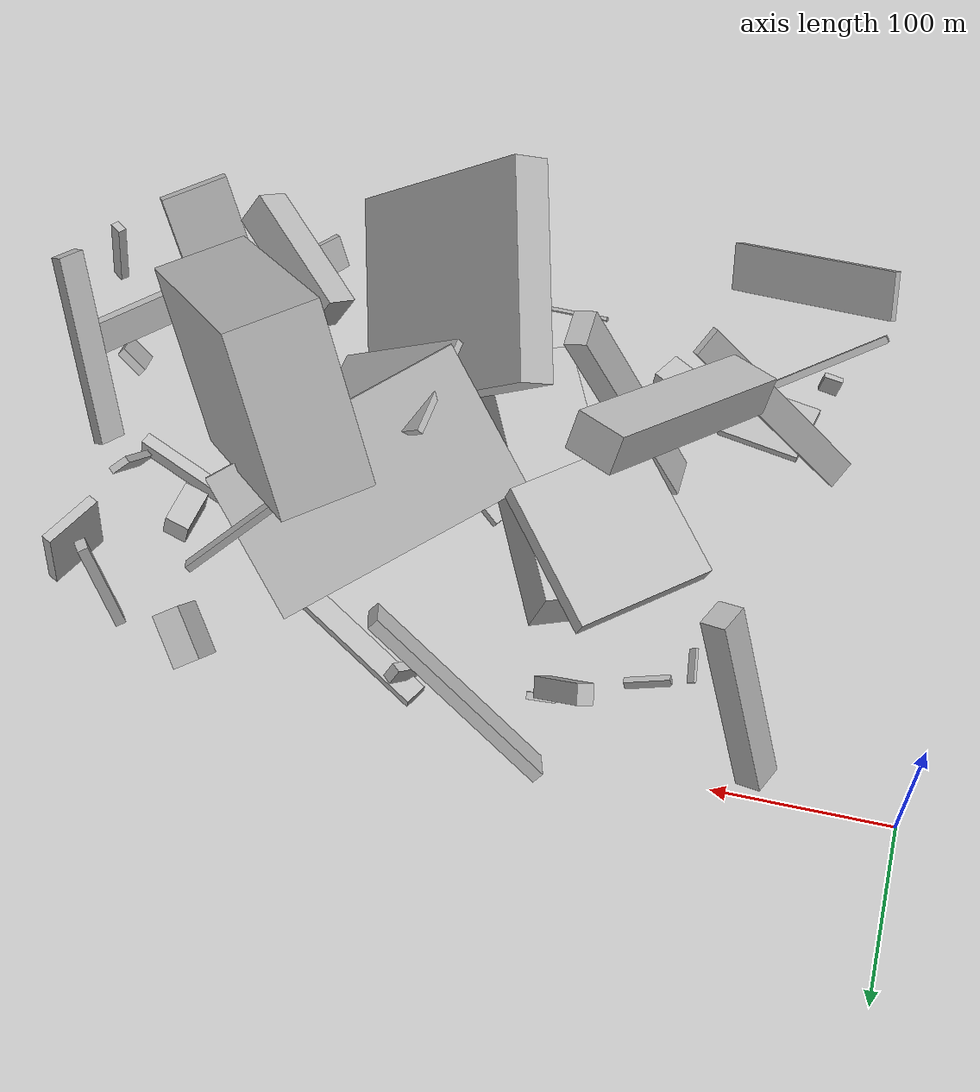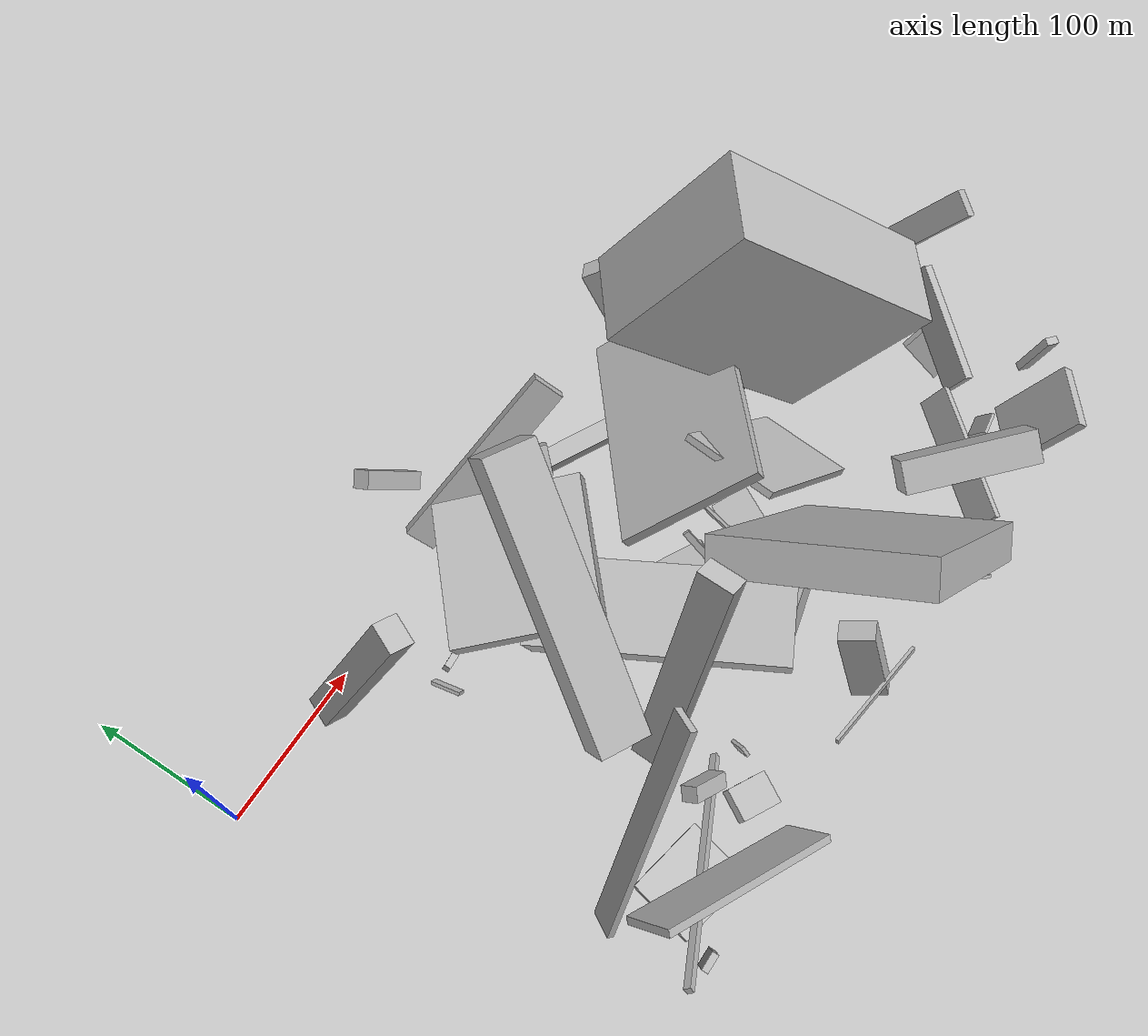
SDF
<sdf version="1.6">
 <world name="default">
  <model name="building_5">
   <static>0</static>
   <pose>271.421746593213 -23.621485639629242 16.13431606164099 1.563093900149482 -0.6673275288255832 0.806832439746451</pose>
   <link name="link">
    <gravity>0</gravity>
    <pose>0 0 3.0 0 0 0</pose>
    <collision name="collision"><geometry><box><size>20 10 6</size></box></geometry></collision>
    <visual name="visual">
     <cast_shadows>0</cast_shadows>
     <geometry><box><size>20 10 6</size></box></geometry>
     <material>
      <script>
       <uri>model://HANNAS_wall/materials/scripts</uri>
       <uri>model://HANNAS_wall/materials/textures</uri>
       <name>vrc/HANNAS_wall</name>
      </script>
     </material>
    </visual>
   </link>
  </model>
  <model name="building_9">
   <static>0</static>
   <pose>155.23234482368116 -216.74964952536408 35.22265276433423 -0.6791956581982874 0.6340952250072783 1.8277188208441097</pose>
   <link name="link">
    <gravity>0</gravity>
    <pose>0 0 13.5 0 0 0</pose>
    <collision name="collision"><geometry><box><size>10 9 27</size></box></geometry></collision>
    <visual name="visual">
     <cast_shadows>0</cast_shadows>
     <geometry><box><size>10 9 27</size></box></geometry>
     <material>
      <script>
       <uri>model://HANNAS_wall/materials/scripts</uri>
       <uri>model://HANNAS_wall/materials/textures</uri>
       <name>vrc/HANNAS_wall</name>
      </script>
     </material>
    </visual>
   </link>
  </model>
  <model name="building_13">
   <static>0</static>
   <pose>346.7322080090878 -160.80504800132942 55.76217485513511 0.8082823899033313 -0.10583015550256554 -1.7351436863449097</pose>
   <link name="link">
    <gravity>0</gravity>
    <pose>0 0 48.5 0 0 0</pose>
    <collision name="collision"><geometry><box><size>57 4 97</size></box></geometry></collision>
    <visual name="visual">
     <cast_shadows>0</cast_shadows>
     <geometry><box><size>57 4 97</size></box></geometry>
     <material>
      <script>
       <uri>model://HANNAS_wall/materials/scripts</uri>
       <uri>model://HANNAS_wall/materials/textures</uri>
       <name>vrc/HANNAS_wall</name>
      </script>
     </material>
    </visual>
   </link>
  </model>
  <model name="building_14">
   <static>0</static>
   <pose>237.87747425466506 2.290979845805071 51.56819352941494 2.357849785618455 0.5709832682782415 0.7369884780921414</pose>
   <link name="link">
    <gravity>0</gravity>
    <pose>0 0 10.0 0 0 0</pose>
    <collision name="collision"><geometry><box><size>7 126 20</size></box></geometry></collision>
    <visual name="visual">
     <cast_shadows>0</cast_shadows>
     <geometry><box><size>7 126 20</size></box></geometry>
     <material>
      <script>
       <uri>model://HANNAS_wall/materials/scripts</uri>
       <uri>model://HANNAS_wall/materials/textures</uri>
       <name>vrc/HANNAS_wall</name>
      </script>
     </material>
    </visual>
   </link>
  </model>
  <model name="building_16">
   <static>0</static>
   <pose>398.97003732014093 -154.1702490644935 109.54044638705864 0.029866214052484026 -0.9027827413062709 -0.9384277073334496</pose>
   <link name="link">
    <gravity>0</gravity>
    <pose>0 0 69.5 0 0 0</pose>
    <collision name="collision"><geometry><box><size>102 51 139</size></box></geometry></collision>
    <visual name="visual">
     <cast_shadows>0</cast_shadows>
     <geometry><box><size>102 51 139</size></box></geometry>
     <material>
      <script>
       <uri>model://HANNAS_wall/materials/scripts</uri>
       <uri>model://HANNAS_wall/materials/textures</uri>
       <name>vrc/HANNAS_wall</name>
      </script>
     </material>
    </visual>
   </link>
  </model>
  <model name="building_17">
   <static>0</static>
   <pose>275.35121001154914 -205.3219912383288 23.209319272910815 0.33802681908174914 -0.3035855335651364 -1.4567776951393692</pose>
   <link name="link">
    <gravity>0</gravity>
    <pose>0 0 6.5 0 0 0</pose>
    <collision name="collision"><geometry><box><size>4 68 13</size></box></geometry></collision>
    <visual name="visual">
     <cast_shadows>0</cast_shadows>
     <geometry><box><size>4 68 13</size></box></geometry>
     <material>
      <script>
       <uri>model://HANNAS_wall/materials/scripts</uri>
       <uri>model://HANNAS_wall/materials/textures</uri>
       <name>vrc/HANNAS_wall</name>
      </script>
     </material>
    </visual>
   </link>
  </model>
  <model name="building_18">
   <static>0</static>
   <pose>194.88710801433808 -154.11973293101568 35.85209927569337 0.45012844119730017 -1.310467868651778 -3.1396361202172685</pose>
   <link name="link">
    <gravity>0</gravity>
    <pose>0 0 26.0 0 0 0</pose>
    <collision name="collision"><geometry><box><size>34 150 52</size></box></geometry></collision>
    <visual name="visual">
     <cast_shadows>0</cast_shadows>
     <geometry><box><size>34 150 52</size></box></geometry>
     <material>
      <script>
       <uri>model://HANNAS_wall/materials/scripts</uri>
       <uri>model://HANNAS_wall/materials/textures</uri>
       <name>vrc/HANNAS_wall</name>
      </script>
     </material>
    </visual>
   </link>
  </model>
  <model name="building_25">
   <static>0</static>
   <pose>296.65571595458874 -218.16371816673745 100.81996352203777 2.211945389465883 -0.4392059310655683 -1.3260516322903309</pose>
   <link name="link">
    <gravity>0</gravity>
    <pose>0 0 11.0 0 0 0</pose>
    <collision name="collision"><geometry><box><size>121 138 22</size></box></geometry></collision>
    <visual name="visual">
     <cast_shadows>0</cast_shadows>
     <geometry><box><size>121 138 22</size></box></geometry>
     <material>
      <script>
       <uri>model://HANNAS_wall/materials/scripts</uri>
       <uri>model://HANNAS_wall/materials/textures</uri>
       <name>vrc/HANNAS_wall</name>
      </script>
     </material>
    </visual>
   </link>
  </model>
  <model name="building_26">
   <static>0</static>
   <pose>176.5906265317878 -175.62605746606974 85.19245224577843 1.9646793592014236 0.047211926715162805 1.5064453995964082</pose>
   <link name="link">
    <gravity>0</gravity>
    <pose>0 0 6.5 0 0 0</pose>
    <collision name="collision"><geometry><box><size>21 150 13</size></box></geometry></collision>
    <visual name="visual">
     <cast_shadows>0</cast_shadows>
     <geometry><box><size>21 150 13</size></box></geometry>
     <material>
      <script>
       <uri>model://HANNAS_wall/materials/scripts</uri>
       <uri>model://HANNAS_wall/materials/textures</uri>
       <name>vrc/HANNAS_wall</name>
      </script>
     </material>
    </visual>
   </link>
  </model>
  <model name="building_29">
   <static>0</static>
   <pose>473.13118394224466 -142.75542190976944 93.24000216343464 -2.5090713097596655 -0.8754352182857953 -1.103711679919635</pose>
   <link name="link">
    <gravity>0</gravity>
    <pose>0 0 3.5 0 0 0</pose>
    <collision name="collision"><geometry><box><size>107 16 7</size></box></geometry></collision>
    <visual name="visual">
     <cast_shadows>0</cast_shadows>
     <geometry><box><size>107 16 7</size></box></geometry>
     <material>
      <script>
       <uri>model://HANNAS_wall/materials/scripts</uri>
       <uri>model://HANNAS_wall/materials/textures</uri>
       <name>vrc/HANNAS_wall</name>
      </script>
     </material>
    </visual>
   </link>
  </model>
  <model name="building_38">
   <static>0</static>
   <pose>155.93506134272093 -244.72449816559055 15.946716063355908 0.02438408609075543 -1.4110927114436425 -2.114599019833601</pose>
   <link name="link">
    <gravity>0</gravity>
    <pose>0 0 9.5 0 0 0</pose>
    <collision name="collision"><geometry><box><size>17 23 19</size></box></geometry></collision>
    <visual name="visual">
     <cast_shadows>0</cast_shadows>
     <geometry><box><size>17 23 19</size></box></geometry>
     <material>
      <script>
       <uri>model://HANNAS_wall/materials/scripts</uri>
       <uri>model://HANNAS_wall/materials/textures</uri>
       <name>vrc/HANNAS_wall</name>
      </script>
     </material>
    </visual>
   </link>
  </model>
  <model name="building_41">
   <static>0</static>
   <pose>341.60662374326216 -85.14145789409254 16.170556541008395 1.436852530031555 -0.055667547855184296 1.2056905520114292</pose>
   <link name="link">
    <gravity>0</gravity>
    <pose>0 0 56.5 0 0 0</pose>
    <collision name="collision"><geometry><box><size>7 11 113</size></box></geometry></collision>
    <visual name="visual">
     <cast_shadows>0</cast_shadows>
     <geometry><box><size>7 11 113</size></box></geometry>
     <material>
      <script>
       <uri>model://HANNAS_wall/materials/scripts</uri>
       <uri>model://HANNAS_wall/materials/textures</uri>
       <name>vrc/HANNAS_wall</name>
      </script>
     </material>
    </visual>
   </link>
  </model>
  <model name="building_44">
   <static>0</static>
   <pose>353.7047776138186 -51.87620045410418 117.01997561058585 2.462572070406906 0.42996031222149983 -1.3111635025501447</pose>
   <link name="link">
    <gravity>0</gravity>
    <pose>0 0 2.0 0 0 0</pose>
    <collision name="collision"><geometry><box><size>6 104 4</size></box></geometry></collision>
    <visual name="visual">
     <cast_shadows>0</cast_shadows>
     <geometry><box><size>6 104 4</size></box></geometry>
     <material>
      <script>
       <uri>model://HANNAS_wall/materials/scripts</uri>
       <uri>model://HANNAS_wall/materials/textures</uri>
       <name>vrc/HANNAS_wall</name>
      </script>
     </material>
    </visual>
   </link>
  </model>
  <model name="building_46">
   <static>0</static>
   <pose>98.1031291967084 -19.045528267698394 64.49531114001341 2.035496633754219 -1.0970166542090434 -0.8408932123322227</pose>
   <link name="link">
    <gravity>0</gravity>
    <pose>0 0 9.0 0 0 0</pose>
    <collision name="collision"><geometry><box><size>113 15 18</size></box></geometry></collision>
    <visual name="visual">
     <cast_shadows>0</cast_shadows>
     <geometry><box><size>113 15 18</size></box></geometry>
     <material>
      <script>
       <uri>model://HANNAS_wall/materials/scripts</uri>
       <uri>model://HANNAS_wall/materials/textures</uri>
       <name>vrc/HANNAS_wall</name>
      </script>
     </material>
    </visual>
   </link>
  </model>
  <model name="building_51">
   <static>0</static>
   <pose>447.143308683971 -267.6027939846478 42.227691159410455 3.040567215498969 -0.9457880873833623 -0.8682007279941073</pose>
   <link name="link">
    <gravity>0</gravity>
    <pose>0 0 3.5 0 0 0</pose>
    <collision name="collision"><geometry><box><size>52 40 7</size></box></geometry></collision>
    <visual name="visual">
     <cast_shadows>0</cast_shadows>
     <geometry><box><size>52 40 7</size></box></geometry>
     <material>
      <script>
       <uri>model://HANNAS_wall/materials/scripts</uri>
       <uri>model://HANNAS_wall/materials/textures</uri>
       <name>vrc/HANNAS_wall</name>
      </script>
     </material>
    </visual>
   </link>
  </model>
  <model name="building_55">
   <static>0</static>
   <pose>108.35342008683637 -192.29144181079405 66.73396188925861 1.1196604996998218 0.4348265121435806 -0.7484699216123905</pose>
   <link name="link">
    <gravity>0</gravity>
    <pose>0 0 8.5 0 0 0</pose>
    <collision name="collision"><geometry><box><size>4 150 17</size></box></geometry></collision>
    <visual name="visual">
     <cast_shadows>0</cast_shadows>
     <geometry><box><size>4 150 17</size></box></geometry>
     <material>
      <script>
       <uri>model://HANNAS_wall/materials/scripts</uri>
       <uri>model://HANNAS_wall/materials/textures</uri>
       <name>vrc/HANNAS_wall</name>
      </script>
     </material>
    </visual>
   </link>
  </model>
  <model name="building_65">
   <static>0</static>
   <pose>386.3809083712303 -14.618123899439466 37.28490891264739 -0.39476335607542407 -0.4570844689023002 -0.9202858906484338</pose>
   <link name="link">
    <gravity>0</gravity>
    <pose>0 0 16.0 0 0 0</pose>
    <collision name="collision"><geometry><box><size>30 15 32</size></box></geometry></collision>
    <visual name="visual">
     <cast_shadows>0</cast_shadows>
     <geometry><box><size>30 15 32</size></box></geometry>
     <material>
      <script>
       <uri>model://HANNAS_wall/materials/scripts</uri>
       <uri>model://HANNAS_wall/materials/textures</uri>
       <name>vrc/HANNAS_wall</name>
      </script>
     </material>
    </visual>
   </link>
  </model>
  <model name="building_69">
   <static>0</static>
   <pose>281.32636424148245 -68.94042906636898 71.01725559378316 -0.9707989765833269 -0.23460316225815703 -2.477251918317001</pose>
   <link name="link">
    <gravity>0</gravity>
    <pose>0 0 42.5 0 0 0</pose>
    <collision name="collision"><geometry><box><size>147 6 85</size></box></geometry></collision>
    <visual name="visual">
     <cast_shadows>0</cast_shadows>
     <geometry><box><size>147 6 85</size></box></geometry>
     <material>
      <script>
       <uri>model://HANNAS_wall/materials/scripts</uri>
       <uri>model://HANNAS_wall/materials/textures</uri>
       <name>vrc/HANNAS_wall</name>
      </script>
     </material>
    </visual>
   </link>
  </model>
  <model name="building_71">
   <static>0</static>
   <pose>120.81248987893424 -173.1858720522274 130.9942589316468 -0.2032277389310323 -0.9439560517571628 -1.8860181093547188</pose>
   <link name="link">
    <gravity>0</gravity>
    <pose>0 0 75.0 0 0 0</pose>
    <collision name="collision"><geometry><box><size>21 27 150</size></box></geometry></collision>
    <visual name="visual">
     <cast_shadows>0</cast_shadows>
     <geometry><box><size>21 27 150</size></box></geometry>
     <material>
      <script>
       <uri>model://HANNAS_wall/materials/scripts</uri>
       <uri>model://HANNAS_wall/materials/textures</uri>
       <name>vrc/HANNAS_wall</name>
      </script>
     </material>
    </visual>
   </link>
  </model>
  <model name="building_73">
   <static>0</static>
   <pose>479.32337742362046 -193.72569129652214 17.79218168637988 2.203436998945835 -0.513512652577913 -2.341326796653107</pose>
   <link name="link">
    <gravity>0</gravity>
    <pose>0 0 8.5 0 0 0</pose>
    <collision name="collision"><geometry><box><size>5 34 17</size></box></geometry></collision>
    <visual name="visual">
     <cast_shadows>0</cast_shadows>
     <geometry><box><size>5 34 17</size></box></geometry>
     <material>
      <script>
       <uri>model://HANNAS_wall/materials/scripts</uri>
       <uri>model://HANNAS_wall/materials/textures</uri>
       <name>vrc/HANNAS_wall</name>
      </script>
     </material>
    </visual>
   </link>
  </model>
  <model name="building_76">
   <static>0</static>
   <pose>143.78392744442283 -52.205304445585064 10.988437874693037 0.7868912275178591 1.156255421118373 2.455073361720852</pose>
   <link name="link">
    <gravity>0</gravity>
    <pose>0 0 2.0 0 0 0</pose>
    <collision name="collision"><geometry><box><size>5 26 4</size></box></geometry></collision>
    <visual name="visual">
     <cast_shadows>0</cast_shadows>
     <geometry><box><size>5 26 4</size></box></geometry>
     <material>
      <script>
       <uri>model://HANNAS_wall/materials/scripts</uri>
       <uri>model://HANNAS_wall/materials/textures</uri>
       <name>vrc/HANNAS_wall</name>
      </script>
     </material>
    </visual>
   </link>
  </model>
  <model name="building_77">
   <static>0</static>
   <pose>461.42619113647646 -45.35329713407715 33.58959965957743 -0.07816284151549588 -0.005811306669042181 2.646631163815487</pose>
   <link name="link">
    <gravity>0</gravity>
    <pose>0 0 20.0 0 0 0</pose>
    <collision name="collision"><geometry><box><size>6 35 40</size></box></geometry></collision>
    <visual name="visual">
     <cast_shadows>0</cast_shadows>
     <geometry><box><size>6 35 40</size></box></geometry>
     <material>
      <script>
       <uri>model://HANNAS_wall/materials/scripts</uri>
       <uri>model://HANNAS_wall/materials/textures</uri>
       <name>vrc/HANNAS_wall</name>
      </script>
     </material>
    </visual>
   </link>
  </model>
  <model name="building_80">
   <static>0</static>
   <pose>398.1633472714932 -242.47676080520537 39.64432349529938 0.9921462521837967 0.06519437478967766 -2.319186184960368</pose>
   <link name="link">
    <gravity>0</gravity>
    <pose>0 0 2.0 0 0 0</pose>
    <collision name="collision"><geometry><box><size>86 20 4</size></box></geometry></collision>
    <visual name="visual">
     <cast_shadows>0</cast_shadows>
     <geometry><box><size>86 20 4</size></box></geometry>
     <material>
      <script>
       <uri>model://HANNAS_wall/materials/scripts</uri>
       <uri>model://HANNAS_wall/materials/textures</uri>
       <name>vrc/HANNAS_wall</name>
      </script>
     </material>
    </visual>
   </link>
  </model>
  <model name="building_82">
   <static>0</static>
   <pose>346.82952422362763 -66.1234297804462 16.821422633426053 -1.6912155654559689 -0.009511388242024306 1.0323392576782144</pose>
   <link name="link">
    <gravity>0</gravity>
    <pose>0 0 48.0 0 0 0</pose>
    <collision name="collision"><geometry><box><size>13 7 96</size></box></geometry></collision>
    <visual name="visual">
     <cast_shadows>0</cast_shadows>
     <geometry><box><size>13 7 96</size></box></geometry>
     <material>
      <script>
       <uri>model://HANNAS_wall/materials/scripts</uri>
       <uri>model://HANNAS_wall/materials/textures</uri>
       <name>vrc/HANNAS_wall</name>
      </script>
     </material>
    </visual>
   </link>
  </model>
  <model name="building_85">
   <static>0</static>
   <pose>494.4160421617978 -247.60699021692574 29.507409671976642 1.6962594632633987 -0.17174291934649885 0.8698641101099696</pose>
   <link name="link">
    <gravity>0</gravity>
    <pose>0 0 4.0 0 0 0</pose>
    <collision name="collision"><geometry><box><size>5 38 8</size></box></geometry></collision>
    <visual name="visual">
     <cast_shadows>0</cast_shadows>
     <geometry><box><size>5 38 8</size></box></geometry>
     <material>
      <script>
       <uri>model://HANNAS_wall/materials/scripts</uri>
       <uri>model://HANNAS_wall/materials/textures</uri>
       <name>vrc/HANNAS_wall</name>
      </script>
     </material>
    </visual>
   </link>
  </model>
  <model name="building_86">
   <static>0</static>
   <pose>112.2476208059426 -231.22222597365703 37.84751664972332 2.571945753365977 -0.5631387815097111 -0.8482723437944749</pose>
   <link name="link">
    <gravity>0</gravity>
    <pose>0 0 2.0 0 0 0</pose>
    <collision name="collision"><geometry><box><size>4 150 4</size></box></geometry></collision>
    <visual name="visual">
     <cast_shadows>0</cast_shadows>
     <geometry><box><size>4 150 4</size></box></geometry>
     <material>
      <script>
       <uri>model://HANNAS_wall/materials/scripts</uri>
       <uri>model://HANNAS_wall/materials/textures</uri>
       <name>vrc/HANNAS_wall</name>
      </script>
     </material>
    </visual>
   </link>
  </model>
  <model name="building_88">
   <static>0</static>
   <pose>96.24227904292638 -240.1595320988268 115.67831960789366 -0.6585192423693895 -0.5313734655806212 2.696270085064754</pose>
   <link name="link">
    <gravity>0</gravity>
    <pose>0 0 13.0 0 0 0</pose>
    <collision name="collision"><geometry><box><size>110 4 26</size></box></geometry></collision>
    <visual name="visual">
     <cast_shadows>0</cast_shadows>
     <geometry><box><size>110 4 26</size></box></geometry>
     <material>
      <script>
       <uri>model://HANNAS_wall/materials/scripts</uri>
       <uri>model://HANNAS_wall/materials/textures</uri>
       <name>vrc/HANNAS_wall</name>
      </script>
     </material>
    </visual>
   </link>
  </model>
  <model name="building_89">
   <static>0</static>
   <pose>265.5258412791094 -249.34625959598577 28.960720889904717 1.2508362426682234 -0.34962640136916834 -1.1158424195235066</pose>
   <link name="link">
    <gravity>0</gravity>
    <pose>0 0 7.0 0 0 0</pose>
    <collision name="collision"><geometry><box><size>21 50 14</size></box></geometry></collision>
    <visual name="visual">
     <cast_shadows>0</cast_shadows>
     <geometry><box><size>21 50 14</size></box></geometry>
     <material>
      <script>
       <uri>model://HANNAS_wall/materials/scripts</uri>
       <uri>model://HANNAS_wall/materials/textures</uri>
       <name>vrc/HANNAS_wall</name>
      </script>
     </material>
    </visual>
   </link>
  </model>
  <model name="building_90">
   <static>0</static>
   <pose>298.14829353966394 -158.0746423664619 17.457302637696923 -2.8757902005087277 -0.08568984630401823 -2.13532271712755</pose>
   <link name="link">
    <gravity>0</gravity>
    <pose>0 0 3.0 0 0 0</pose>
    <collision name="collision"><geometry><box><size>58 24 6</size></box></geometry></collision>
    <visual name="visual">
     <cast_shadows>0</cast_shadows>
     <geometry><box><size>58 24 6</size></box></geometry>
     <material>
      <script>
       <uri>model://HANNAS_wall/materials/scripts</uri>
       <uri>model://HANNAS_wall/materials/textures</uri>
       <name>vrc/HANNAS_wall</name>
      </script>
     </material>
    </visual>
   </link>
  </model>
  <model name="building_91">
   <static>0</static>
   <pose>193.19552350058575 3.3605277888373424 94.02385649061773 0.6087283144730591 0.5013490531528355 -2.6553712959968316</pose>
   <link name="link">
    <gravity>0</gravity>
    <pose>0 0 19.0 0 0 0</pose>
    <collision name="collision"><geometry><box><size>10 11 38</size></box></geometry></collision>
    <visual name="visual">
     <cast_shadows>0</cast_shadows>
     <geometry><box><size>10 11 38</size></box></geometry>
     <material>
      <script>
       <uri>model://HANNAS_wall/materials/scripts</uri>
       <uri>model://HANNAS_wall/materials/textures</uri>
       <name>vrc/HANNAS_wall</name>
      </script>
     </material>
    </visual>
   </link>
  </model>
  <model name="building_93">
   <static>0</static>
   <pose>441.37065612664406 -108.36616951652708 47.4094943791082 2.31913573014999 -0.9644744903380247 1.620546145604239</pose>
   <link name="link">
    <gravity>0</gravity>
    <pose>0 0 5.5 0 0 0</pose>
    <collision name="collision"><geometry><box><size>65 4 11</size></box></geometry></collision>
    <visual name="visual">
     <cast_shadows>0</cast_shadows>
     <geometry><box><size>65 4 11</size></box></geometry>
     <material>
      <script>
       <uri>model://HANNAS_wall/materials/scripts</uri>
       <uri>model://HANNAS_wall/materials/textures</uri>
       <name>vrc/HANNAS_wall</name>
      </script>
     </material>
    </visual>
   </link>
  </model>
  <model name="building_96">
   <static>0</static>
   <pose>197.72947378557205 -26.167046134837136 12.512076923365008 1.1188184437217572 -0.011646087698384423 0.06183226049822846</pose>
   <link name="link">
    <gravity>0</gravity>
    <pose>0 0 2.0 0 0 0</pose>
    <collision name="collision"><geometry><box><size>16 19 4</size></box></geometry></collision>
    <visual name="visual">
     <cast_shadows>0</cast_shadows>
     <geometry><box><size>16 19 4</size></box></geometry>
     <material>
      <script>
       <uri>model://HANNAS_wall/materials/scripts</uri>
       <uri>model://HANNAS_wall/materials/textures</uri>
       <name>vrc/HANNAS_wall</name>
      </script>
     </material>
    </visual>
   </link>
  </model>
  <model name="building_98">
   <static>0</static>
   <pose>458.0782430817378 -187.69812462015514 49.89832276764618 0.44125572810100727 -0.19350621074875463 0.8486781367104556</pose>
   <link name="link">
    <gravity>0</gravity>
    <pose>0 0 9.5 0 0 0</pose>
    <collision name="collision"><geometry><box><size>75 6 19</size></box></geometry></collision>
    <visual name="visual">
     <cast_shadows>0</cast_shadows>
     <geometry><box><size>75 6 19</size></box></geometry>
     <material>
      <script>
       <uri>model://HANNAS_wall/materials/scripts</uri>
       <uri>model://HANNAS_wall/materials/textures</uri>
       <name>vrc/HANNAS_wall</name>
      </script>
     </material>
    </visual>
   </link>
  </model>
  <model name="building_99">
   <static>0</static>
   <pose>110.05650194993687 -211.7202088692682 8.599790240040218 1.7243697488051368 0.05498179745392994 -0.2156213367476665</pose>
   <link name="link">
    <gravity>0</gravity>
    <pose>0 0 20.0 0 0 0</pose>
    <collision name="collision"><geometry><box><size>48 4 40</size></box></geometry></collision>
    <visual name="visual">
     <cast_shadows>0</cast_shadows>
     <geometry><box><size>48 4 40</size></box></geometry>
     <material>
      <script>
       <uri>model://HANNAS_wall/materials/scripts</uri>
       <uri>model://HANNAS_wall/materials/textures</uri>
       <name>vrc/HANNAS_wall</name>
      </script>
     </material>
    </visual>
   </link>
  </model>
  <model name="building_102">
   <static>0</static>
   <pose>120.47357631246388 -51.195048846910424 18.940927364051667 1.2436864297653152 0.8112837323635996 -0.12831751680198777</pose>
   <link name="link">
    <gravity>0</gravity>
    <pose>0 0 9.5 0 0 0</pose>
    <collision name="collision"><geometry><box><size>5 2 19</size></box></geometry></collision>
    <visual name="visual">
     <cast_shadows>0</cast_shadows>
     <geometry><box><size>5 2 19</size></box></geometry>
     <material>
      <script>
       <uri>model://HANNAS_wall/materials/scripts</uri>
       <uri>model://HANNAS_wall/materials/textures</uri>
       <name>vrc/HANNAS_wall</name>
      </script>
     </material>
    </visual>
   </link>
  </model>
  <model name="building_103">
   <static>0</static>
   <pose>287.84260403041776 -130.6726785259006 41.041359960712285 1.2548446484673572 -0.28505816664291367 -0.28327878358739383</pose>
   <link name="link">
    <gravity>0</gravity>
    <pose>0 0 34.5 0 0 0</pose>
    <collision name="collision"><geometry><box><size>2 12 69</size></box></geometry></collision>
    <visual name="visual">
     <cast_shadows>0</cast_shadows>
     <geometry><box><size>2 12 69</size></box></geometry>
     <material>
      <script>
       <uri>model://HANNAS_wall/materials/scripts</uri>
       <uri>model://HANNAS_wall/materials/textures</uri>
       <name>vrc/HANNAS_wall</name>
      </script>
     </material>
    </visual>
   </link>
  </model>
  <model name="building_105">
   <static>0</static>
   <pose>230.68583577533008 -138.35726883541219 22.757669102353915 -1.2324022499457945 0.1560240427340342 -2.143994982329313</pose>
   <link name="link">
    <gravity>0</gravity>
    <pose>0 0 17.5 0 0 0</pose>
    <collision name="collision"><geometry><box><size>47 5 35</size></box></geometry></collision>
    <visual name="visual">
     <cast_shadows>0</cast_shadows>
     <geometry><box><size>47 5 35</size></box></geometry>
     <material>
      <script>
       <uri>model://HANNAS_wall/materials/scripts</uri>
       <uri>model://HANNAS_wall/materials/textures</uri>
       <name>vrc/HANNAS_wall</name>
      </script>
     </material>
    </visual>
   </link>
  </model>
  <model name="building_116">
   <static>0</static>
   <pose>442.7083510982838 -31.2791862015645 32.93812225289266 1.9284354950392066 0.1261707302091125 0.6221948319617087</pose>
   <link name="link">
    <gravity>0</gravity>
    <pose>0 0 4.5 0 0 0</pose>
    <collision name="collision"><geometry><box><size>6 60 9</size></box></geometry></collision>
    <visual name="visual">
     <cast_shadows>0</cast_shadows>
     <geometry><box><size>6 60 9</size></box></geometry>
     <material>
      <script>
       <uri>model://HANNAS_wall/materials/scripts</uri>
       <uri>model://HANNAS_wall/materials/textures</uri>
       <name>vrc/HANNAS_wall</name>
      </script>
     </material>
    </visual>
   </link>
  </model>
  <model name="building_121">
   <static>0</static>
   <pose>262.0381283093777 -149.11492258983807 37.435677422154455 -2.462124099518698 0.7729917382010387 -1.5729332071369853</pose>
   <link name="link">
    <gravity>0</gravity>
    <pose>0 0 1.0 0 0 0</pose>
    <collision name="collision"><geometry><box><size>49 4 2</size></box></geometry></collision>
    <visual name="visual">
     <cast_shadows>0</cast_shadows>
     <geometry><box><size>49 4 2</size></box></geometry>
     <material>
      <script>
       <uri>model://HANNAS_wall/materials/scripts</uri>
       <uri>model://HANNAS_wall/materials/textures</uri>
       <name>vrc/HANNAS_wall</name>
      </script>
     </material>
    </visual>
   </link>
  </model>
  <model name="building_125">
   <static>0</static>
   <pose>246.88024467178326 -266.6002432391066 27.316890289284686 2.916933773567278 -0.3638479547759594 -1.6391842655179243</pose>
   <link name="link">
    <gravity>0</gravity>
    <pose>0 0 1.5 0 0 0</pose>
    <collision name="collision"><geometry><box><size>2 80 3</size></box></geometry></collision>
    <visual name="visual">
     <cast_shadows>0</cast_shadows>
     <geometry><box><size>2 80 3</size></box></geometry>
     <material>
      <script>
       <uri>model://HANNAS_wall/materials/scripts</uri>
       <uri>model://HANNAS_wall/materials/textures</uri>
       <name>vrc/HANNAS_wall</name>
      </script>
     </material>
    </visual>
   </link>
  </model>
  <model name="building_127">
   <static>0</static>
   <pose>391.98834100844033 -239.311871111218 66.03721355560246 2.173747612644296 -0.11703797510403995 -0.8007872325981451</pose>
   <link name="link">
    <gravity>0</gravity>
    <pose>0 0 10.0 0 0 0</pose>
    <collision name="collision"><geometry><box><size>80 22 20</size></box></geometry></collision>
    <visual name="visual">
     <cast_shadows>0</cast_shadows>
     <geometry><box><size>80 22 20</size></box></geometry>
     <material>
      <script>
       <uri>model://HANNAS_wall/materials/scripts</uri>
       <uri>model://HANNAS_wall/materials/textures</uri>
       <name>vrc/HANNAS_wall</name>
      </script>
     </material>
    </visual>
   </link>
  </model>
  <model name="building_131">
   <static>0</static>
   <pose>256.7461983478546 -169.3515285594504 7.756912573203741 -3.0870217691761908 -0.9319626347529238 -0.687657436079018</pose>
   <link name="link">
    <gravity>0</gravity>
    <pose>0 0 6.0 0 0 0</pose>
    <collision name="collision"><geometry><box><size>4 17 12</size></box></geometry></collision>
    <visual name="visual">
     <cast_shadows>0</cast_shadows>
     <geometry><box><size>4 17 12</size></box></geometry>
     <material>
      <script>
       <uri>model://HANNAS_wall/materials/scripts</uri>
       <uri>model://HANNAS_wall/materials/textures</uri>
       <name>vrc/HANNAS_wall</name>
      </script>
     </material>
    </visual>
   </link>
  </model>
  <model name="building_135">
   <static>0</static>
   <pose>415.03117926900205 -90.66817602685477 16.19831610237924 -0.053419847806181954 -0.23382873261323653 -0.20887881852666468</pose>
   <link name="link">
    <gravity>0</gravity>
    <pose>0 0 10.5 0 0 0</pose>
    <collision name="collision"><geometry><box><size>14 24 21</size></box></geometry></collision>
    <visual name="visual">
     <cast_shadows>0</cast_shadows>
     <geometry><box><size>14 24 21</size></box></geometry>
     <material>
      <script>
       <uri>model://HANNAS_wall/materials/scripts</uri>
       <uri>model://HANNAS_wall/materials/textures</uri>
       <name>vrc/HANNAS_wall</name>
      </script>
     </material>
    </visual>
   </link>
  </model>
  <model name="building_136">
   <static>0</static>
   <pose>174.6037014195871 -77.92259632972115 121.40426473159718 3.006492706966093 0.22490966842481983 2.262651400533314</pose>
   <link name="link">
    <gravity>0</gravity>
    <pose>0 0 6.0 0 0 0</pose>
    <collision name="collision"><geometry><box><size>80 78 12</size></box></geometry></collision>
    <visual name="visual">
     <cast_shadows>0</cast_shadows>
     <geometry><box><size>80 78 12</size></box></geometry>
     <material>
      <script>
       <uri>model://HANNAS_wall/materials/scripts</uri>
       <uri>model://HANNAS_wall/materials/textures</uri>
       <name>vrc/HANNAS_wall</name>
      </script>
     </material>
    </visual>
   </link>
  </model>
  <model name="building_140">
   <static>0</static>
   <pose>429.8383895490892 -246.48551207205833 38.60770445287964 3.055924533376715 -0.5375081927833286 1.7276933921546467</pose>
   <link name="link">
    <gravity>0</gravity>
    <pose>0 0 7.5 0 0 0</pose>
    <collision name="collision"><geometry><box><size>2 14 15</size></box></geometry></collision>
    <visual name="visual">
     <cast_shadows>0</cast_shadows>
     <geometry><box><size>2 14 15</size></box></geometry>
     <material>
      <script>
       <uri>model://HANNAS_wall/materials/scripts</uri>
       <uri>model://HANNAS_wall/materials/textures</uri>
       <name>vrc/HANNAS_wall</name>
      </script>
     </material>
    </visual>
   </link>
  </model>
  <model name="building_141">
   <static>0</static>
   <pose>75.10680246532135 -261.68698755397713 11.894649861991919 0.6836257128849995 -1.2189440721559806 -2.249255973690119</pose>
   <link name="link">
    <gravity>0</gravity>
    <pose>0 0 2.0 0 0 0</pose>
    <collision name="collision"><geometry><box><size>11 11 4</size></box></geometry></collision>
    <visual name="visual">
     <cast_shadows>0</cast_shadows>
     <geometry><box><size>11 11 4</size></box></geometry>
     <material>
      <script>
       <uri>model://HANNAS_wall/materials/scripts</uri>
       <uri>model://HANNAS_wall/materials/textures</uri>
       <name>vrc/HANNAS_wall</name>
      </script>
     </material>
    </visual>
   </link>
  </model>
  <model name="building_142">
   <static>0</static>
   <pose>181.4311473349808 -214.44626375055796 17.349414229450492 0.16765972802762355 0.8514288100246457 -1.6822424549563229</pose>
   <link name="link">
    <gravity>0</gravity>
    <pose>0 0 5.0 0 0 0</pose>
    <collision name="collision"><geometry><box><size>8 2 10</size></box></geometry></collision>
    <visual name="visual">
     <cast_shadows>0</cast_shadows>
     <geometry><box><size>8 2 10</size></box></geometry>
     <material>
      <script>
       <uri>model://HANNAS_wall/materials/scripts</uri>
       <uri>model://HANNAS_wall/materials/textures</uri>
       <name>vrc/HANNAS_wall</name>
      </script>
     </material>
    </visual>
   </link>
  </model>
  <model name="building_144">
   <static>0</static>
   <pose>320.1332445041869 -266.459344980511 35.094780233698295 0.5520559405766416 0.7624550645570626 1.251025899987919</pose>
   <link name="link">
    <gravity>0</gravity>
    <pose>0 0 1.0 0 0 0</pose>
    <collision name="collision"><geometry><box><size>2 80 2</size></box></geometry></collision>
    <visual name="visual">
     <cast_shadows>0</cast_shadows>
     <geometry><box><size>2 80 2</size></box></geometry>
     <material>
      <script>
       <uri>model://HANNAS_wall/materials/scripts</uri>
       <uri>model://HANNAS_wall/materials/textures</uri>
       <name>vrc/HANNAS_wall</name>
      </script>
     </material>
    </visual>
   </link>
  </model>
 </world>
</sdf>
